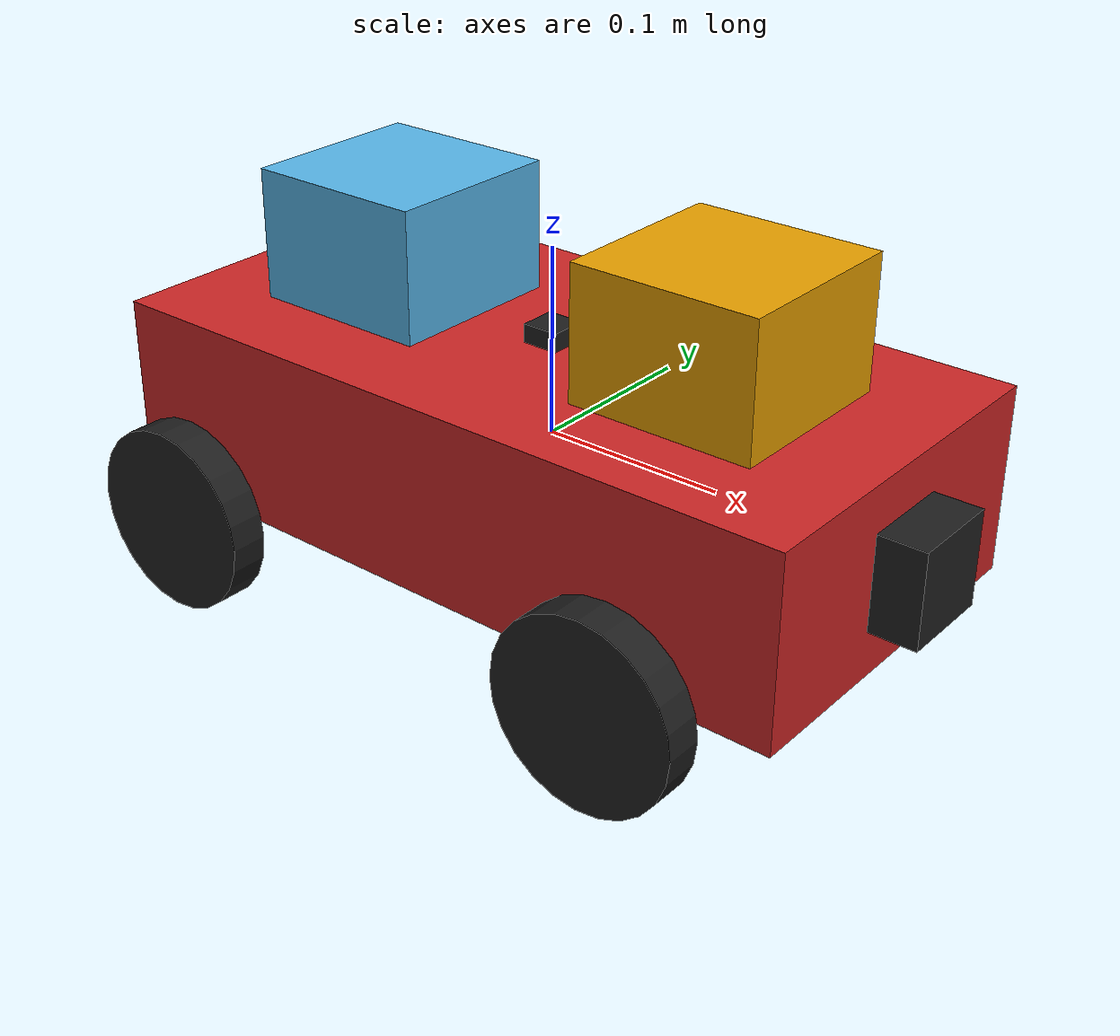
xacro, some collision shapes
<?xml version='1.0'?>

<robot name="rc110_robot" xmlns:xacro="http://www.ros.org/wiki/xacro">

    <xacro:include filename="$(find rc110_simulation)/urdf/rc110_robot.gazebo" />

    <link name="robot_footprint"></link>

    <joint name="robot_footprint_joint" type="fixed">
        <origin xyz="0 0 0" rpy="0 0 0" />
        <parent link="robot_footprint" />
        <child link="base_link" />
    </joint>

    <!-- base_link -->
    <link name='base_link'>
        <pose>0 0 0.1 0 0 0</pose>

        <inertial>
            <mass value="15.0" />
            <origin xyz="0.0 0 0" rpy=" 0 0 0" />
            <inertia ixx="0.1" ixy="0" ixz="0" iyy="0.1" iyz="0" izz="0.1" />
        </inertial>

        <collision name='collision'>
            <origin xyz="0 0 0" rpy=" 0 0 0" />
            <geometry>
                <box size="0.4 0.2 0.1" />
            </geometry>
        </collision>

        <visual name='base_link_visual'>
            <origin xyz="0 0 0" rpy=" 0 0 0" />
            <geometry>
                <box size="0.4 0.2 0.1" />
            </geometry>
        </visual>
    </link>
    <gazebo reference="base_link">
        <material>Gazebo/Red</material>
    </gazebo>

    <!-- rear left wheel -->
    <link name='rear_left_wheel'>
        <inertial>
            <mass value="5.0" />
            <origin xyz="0 0 0" rpy="0 1.5708 1.5708" />
            <inertia ixx="0.1" ixy="0" ixz="0" iyy="0.1" iyz="0" izz="0.1" />
        </inertial>

        <visual name='rear_left_wheel_visual'>
            <origin xyz="0 0 0" rpy="0 1.5708 1.5708" />
            <geometry>
                <cylinder radius="0.05" length="0.02" />
            </geometry>
        </visual>

        <collision name='rear_left_wheel_collision'>
            <origin xyz="0 0 0" rpy=" 0 1.5708 1.5708" />
            <geometry>
                <cylinder radius="0.05" length="0.02" />
            </geometry>
        </collision>
    </link>
    <joint type="continuous" name="rear_left_wheel_joint">
        <origin xyz="-0.15 0.12 -0.05" rpy="0 0 0" />
        <child link="rear_left_wheel" />
        <parent link="base_link" />
        <axis xyz="0 1 0" rpy="0 0 0" />
        <limit effort="10000" velocity="1000" />
        <dynamics damping="1.0" friction="1.0" />
    </joint>
    <gazebo reference="rear_left_wheel">
        <material>Gazebo/Black</material>
    </gazebo>

    <!-- rear right wheel -->
    <link name='rear_right_wheel'>
        <inertial>
            <mass value="5.0" />
            <origin xyz="0 0 0" rpy="0 1.5708 1.5708" />
            <inertia ixx="0.1" ixy="0" ixz="0" iyy="0.1" iyz="0" izz="0.1" />
        </inertial>

        <visual name='rear_right_wheel_visual'>
            <origin xyz="0 0 0" rpy="0 1.5708 1.5708" />
            <geometry>
                <cylinder radius="0.05" length="0.02" />
            </geometry>
        </visual>

        <collision name='rear_right_wheel_collision'>
            <origin xyz="0 0 0" rpy=" 0 1.5708 1.5708" />
            <geometry>
                <cylinder radius="0.05" length="0.02" />
            </geometry>
        </collision>
    </link>
    <joint type="continuous" name="rear_right_wheel_joint">
        <origin xyz="-0.15 -0.12 -0.05" rpy="0 0 0" />
        <child link="rear_right_wheel" />
        <parent link="base_link" />
        <axis xyz="0 1 0" rpy="0 0 0" />
        <limit effort="10000" velocity="1000" />
        <dynamics damping="1.0" friction="1.0" />
    </joint>
    <gazebo reference="rear_right_wheel">
        <material>Gazebo/Black</material>
    </gazebo>

    <!-- front left wheel -->
    <link name='front_left_wheel'>
        <inertial>
            <mass value="5.0" />
            <origin xyz="0 0 0" rpy="0 1.5708 1.5708" />
            <inertia ixx="0.1" ixy="0" ixz="0" iyy="0.1" iyz="0" izz="0.1" />
        </inertial>

        <visual name='front_left_wheel_visual'>
            <origin xyz="0 0 0" rpy="0 1.5708 1.5708" />
            <geometry>
                <cylinder radius="0.05" length="0.02" />
            </geometry>
        </visual>

        <collision name='front_left_wheel_collision'>
            <origin xyz="0 0 0" rpy=" 0 1.5708 1.5708" />
            <geometry>
                <cylinder radius="0.05" length="0.02" />
            </geometry>
        </collision>
    </link>
    <joint type="continuous" name="front_left_wheel_joint">
        <origin xyz="0.12 0.12 -0.05" rpy="0 0 0" />
        <child link="front_left_wheel" />
        <parent link="base_link" />
        <axis xyz="0 1 0" rpy="0 0 0" />
        <limit effort="10000" velocity="1000" />
        <dynamics damping="1.0" friction="1.0" />
    </joint>
    <gazebo reference="front_left_wheel">
        <material>Gazebo/Black</material>
    </gazebo>

    <!-- front right wheel -->
    <link name='front_right_wheel'>
        <inertial>
            <mass value="5.0" />
            <origin xyz="0 0 0" rpy="0 1.5708 1.5708" />
            <inertia ixx="0.1" ixy="0" ixz="0" iyy="0.1" iyz="0" izz="0.1" />
        </inertial>

        <visual name='front_right_wheel_visual'>
            <origin xyz="0 0 0" rpy="0 1.5708 1.5708" />
            <geometry>
                <cylinder radius="0.05" length="0.02" />
            </geometry>
        </visual>

        <collision name='front_right_wheel_collision'>
            <origin xyz="0 0 0" rpy=" 0 1.5708 1.5708" />
            <geometry>
                <cylinder radius="0.05" length="0.02" />
            </geometry>
        </collision>
    </link>
    <joint type="continuous" name="front_right_wheel_joint">
        <origin xyz="0.12 -0.12 -0.05" rpy="0 0 0" />
        <child link="front_right_wheel" />
        <parent link="base_link" />
        <axis xyz="0 1 0" rpy="0 0 0" />
        <limit effort="10000" velocity="1000" />
        <dynamics damping="1.0" friction="1.0" />
    </joint>
    <gazebo reference="front_right_wheel">
        <material>Gazebo/Black</material>
    </gazebo>

    <!-- front camera -->
    <link name='front_camera'>
        <inertial>
            <mass value="0.1" />
            <origin xyz="0 0 0" rpy="0 0 0" />
            <box_inertia m="0.1" x="0.05" y="0.05" z="0.05" />
            <inertia ixx="1e-6" ixy="0" ixz="0" iyy="1e-6" iyz="0" izz="1e-6" />
        </inertial>

        <visual name='front_camera_visual'>
            <origin xyz="0 0 0" rpy="0 0 0" />
            <geometry>
                <box size="0.05 0.05 0.05" />
            </geometry>
        </visual>

        <collision name='front_camera_collision'>
            <origin xyz="0 0 0" rpy="0 0 0" />
            <geometry>
                <box size="0.05 0.05 0.05" />
            </geometry>
        </collision>
    </link>
    <joint type="fixed" name="front_camera_joint">
        <origin xyz="0.2 0 0" rpy="0 0 0" />
        <child link="front_camera" />
        <parent link="base_link" />
        <axis xyz="0 1 0" rpy="0 0 0" />
    </joint>
    <gazebo reference="front_camera">
        <material>Gazebo/Black</material>
    </gazebo>

    <!-- rear camera -->
    <link name='rear_camera'>
        <inertial>
            <mass value="0.1" />
            <origin xyz="0 0 0" rpy="0 0 0" />
            <box_inertia m="0.1" x="0.05" y="0.05" z="0.05" />
            <inertia ixx="1e-6" ixy="0" ixz="0" iyy="1e-6" iyz="0" izz="1e-6" />
        </inertial>

        <visual name='rear_camera_visual'>
            <origin xyz="0 0 0" rpy="0 0 0" />
            <geometry>
                <box size="0.05 0.05 0.05" />
            </geometry>
        </visual>

        <collision name='rear_camera_collision'>
            <origin xyz="0 0 0" rpy="0 0 0" />
            <geometry>
                <box size="0.05 0.05 0.05" />
            </geometry>
        </collision>
    </link>
    <joint type="fixed" name="rear_camera_joint">
        <origin xyz="-0.2 0 0" rpy="0 0 3.1416" />
        <child link="rear_camera" />
        <parent link="base_link" />
        <axis xyz="0 1 0" rpy="0 0 0" />
    </joint>
    <gazebo reference="rear_camera">
        <material>Gazebo/Black</material>
    </gazebo>

    <!-- front 2D lidar -->
    <link name='front_lidar'>
        <inertial>
            <mass value="1e-5" />
            <origin xyz="0 0 0" rpy="0 0 0" />
            <inertia ixx="1e-6" ixy="0" ixz="0" iyy="1e-6" iyz="0" izz="1e-6" />
        </inertial>

        <visual name='front_lidar_visual'>
            <origin xyz="0 0 0" rpy="0 0 0" />
            <geometry>
                <mesh filename="package://rc110_simulation/models/meshes/hokuyo.dae" />
            </geometry>
        </visual>

        <collision name='front_lidar_collision'>
            <origin xyz="0 0 0" rpy="0 0 0" />
            <geometry>
                <box size="0.1 0.1 0.1" />
            </geometry>
        </collision>
    </link>
    <joint type="fixed" name="front_lidar_joint">
        <origin xyz="0.1 0 0.07" rpy="0 0 0" />
        <child link="front_lidar" />
        <parent link="base_link" />
        <axis xyz="0 1 0" rpy="0 0 0" />
    </joint>

    <!-- rear 2D lidar -->
    <link name='rear_lidar'>
        <inertial>
            <mass value="1e-5" />
            <origin xyz="0 0 0" rpy="0 0 0" />
            <inertia ixx="1e-6" ixy="0" ixz="0" iyy="1e-6" iyz="0" izz="1e-6" />
        </inertial>

        <visual name='rear_lidar_visual'>
            <origin xyz="0 0 0" rpy="0 0 0" />
            <geometry>
                <mesh filename="package://rc110_simulation/meshes/hokuyo.dae" />
            </geometry>
        </visual>

        <collision name='rear_lidar_collision'>
            <origin xyz="0 0 0" rpy="0 0 0" />
            <geometry>
                <box size="0.1 0.1 0.1" />
            </geometry>
        </collision>
    </link>
    <joint type="fixed" name="rear_lidar_joint">
        <origin xyz="-0.1 0 0.07" rpy="0 0 3.1416" />
        <child link="rear_lidar" />
        <parent link="base_link" />
        <axis xyz="0 1 0" rpy="0 0 0" />
    </joint>

    <!-- imu -->
    <link name='imu_link'>
        <inertial>
            <mass value="0.05" />
            <origin xyz="0 0 0" rpy="0 0 0" />
            <box_inertia m="0.1" x="0.05" y="0.05" z="0.05" />
            <inertia ixx="1e-6" ixy="0" ixz="0" iyy="1e-6" iyz="0" izz="1e-6" />
        </inertial>

        <visual name='imu_link_visual'>
            <origin xyz="0 0 0" rpy="0 0 0" />
            <geometry>
                <box size="0.02 0.02 0.01" />
            </geometry>
        </visual>

        <collision name='imu_link_collision'>
            <origin xyz="0 0 0" rpy="0 0 0" />
            <geometry>
                <box size="0.02 0.02 0.01" />
            </geometry>
        </collision>
    </link>
    <joint type="fixed" name="imu_joint">
        <origin xyz="0 0 0.055" rpy="0 0 0" />
        <child link="imu_link"/>
        <parent link="base_link"/>
        <axis xyz="0 1 0" rpy="0 0 0" />
    </joint>
        <gazebo reference="imu_link">
        <material>Gazebo/Black</material>
    </gazebo>
</robot>
